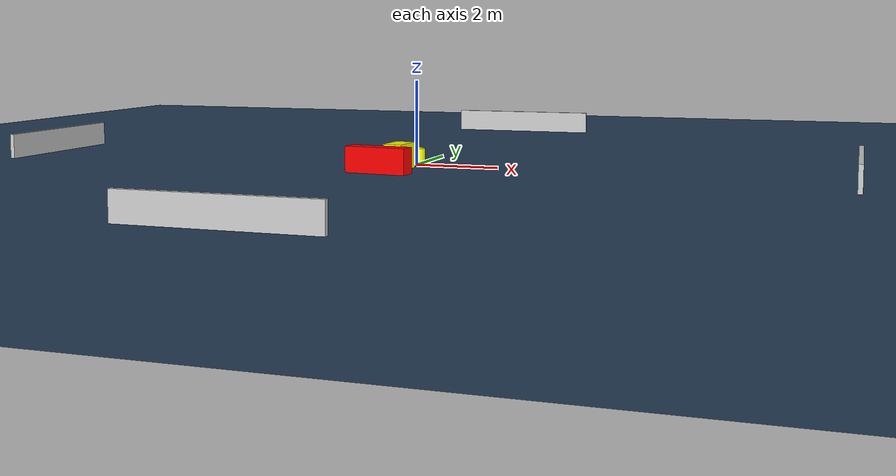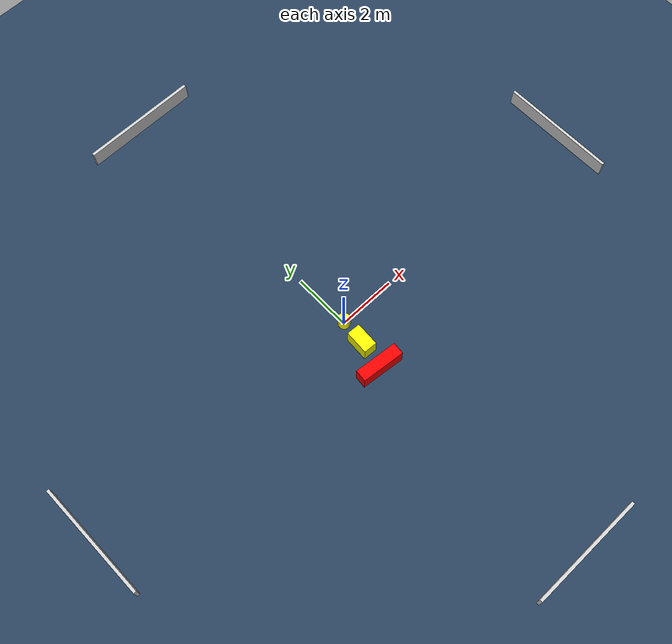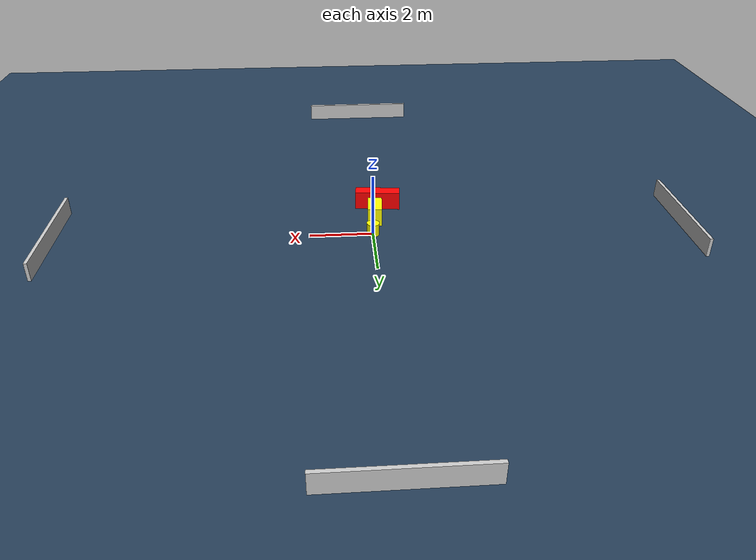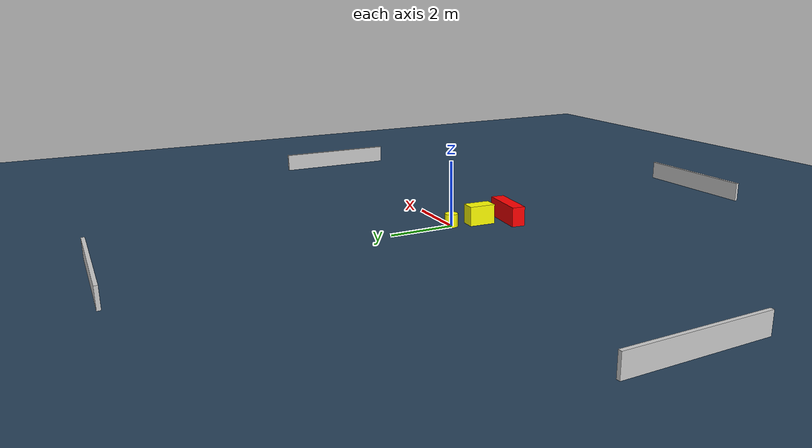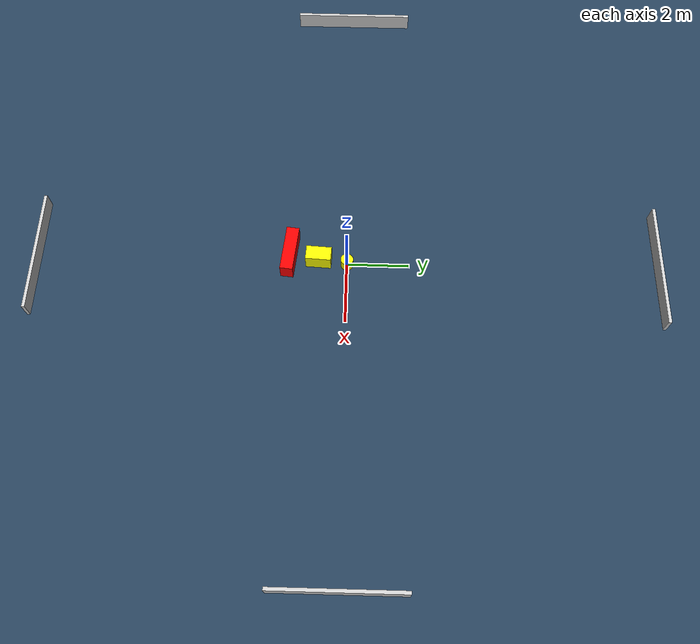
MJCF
<?xml version="1.0" ?>
<mujoco model="generated_environment">
  <option timestep="0.01" integrator="RK4" cone="elliptic"/>
  <default>
    <geom density="1"/>
  </default>
  <asset>
    <texture builtin="gradient" height="3072" name="skybox" rgb1="0.3 0.5 0.7" rgb2="0 0 0" type="skybox" width="512"/>
    <texture builtin="checker" height="300" name="groundplane" rgb1="0.2 0.3 0.4" rgb2="0.1 0.2 0.3" type="2d" width="300"/>
    <material name="groundplane" reflectance="0.2" texrepeat="5 5" texture="groundplane"/>
  </asset>
  <worldbody>
    <light dir="0 0 -1" directional="true" pos="0 0 1.5"/>
    <geom condim="3" friction="0.5 0.005 0.001" material="groundplane" name="floor" pos="0 0 0" size="0 0 0.05" type="plane"/>
    <body name="walls">
      <geom name="wall_1" condim="4" pos="-10.0 0.0 0.3" rgba="0.800000011920929 0.800000011920929 0.800000011920929 1.0" size="0.05 2.0 0.3" type="box"/>
      <geom name="wall_2" condim="4" pos="10.0 0.0 0.3" rgba="0.800000011920929 0.800000011920929 0.800000011920929 1.0" size="0.05 2.0 0.3" type="box"/>
      <geom name="wall_3" condim="4" pos="0.0 -10.0 0.3" rgba="0.800000011920929 0.800000011920929 0.800000011920929 1.0" size="2.0 0.05 0.3" type="box"/>
      <geom name="wall_4" condim="4" pos="0.0 10.0 0.3" rgba="0.800000011920929 0.800000011920929 0.800000011920929 1.0" size="2.0 0.05 0.3" type="box"/>
    </body>
    <body name="robot">
      <joint name="joint_x" type="slide" pos="0 0 0" axis="1 0 0"/>
      <joint name="joint_y" type="slide" pos="0 0 0" axis="0 1 0"/>
      <geom name="robot" type="cylinder" pos="0.0 0.0 0.2" size="0.2 0.2 0.0" mass="5.0" friction="1.0 0.005 0.0001" condim="4" rgba="1.0 1.0 0.0 1.0"/>
    </body>
    <body name="obstacle_1_movable">
      <geom name="obstacle_1_movable" condim="4" pos="-0.1158944786325703 -0.9138602254917502 0.3" euler="0 0 266.6197673633301" friction="0.0 0.005 0.001" rgba="1.0 1.0 0.0 1.0" size="0.4067471064307736 0.2288504933298674 0.3" type="box" mass="0.1"/>
      <joint type="free"/>
    </body>
    <body name="obstacle_2_static">
      <geom name="obstacle_2_static" condim="4" pos="-0.27014216139361963 -1.8469392576727663 0.3" euler="0 0 83.97348292698305" friction="0.0 0.005 0.001" rgba="1.0 0.0 0.0 1.0" size="0.20519013680205805 0.7397034089872501 0.3" type="box"/>
    </body>
  </worldbody>
  <actuator>
    <motor name="actuator_x" joint="joint_x" gear="1" ctrlrange="-1 1"/>
    <motor name="actuator_y" joint="joint_y" gear="1" ctrlrange="-1 1"/>
  </actuator>
</mujoco>
